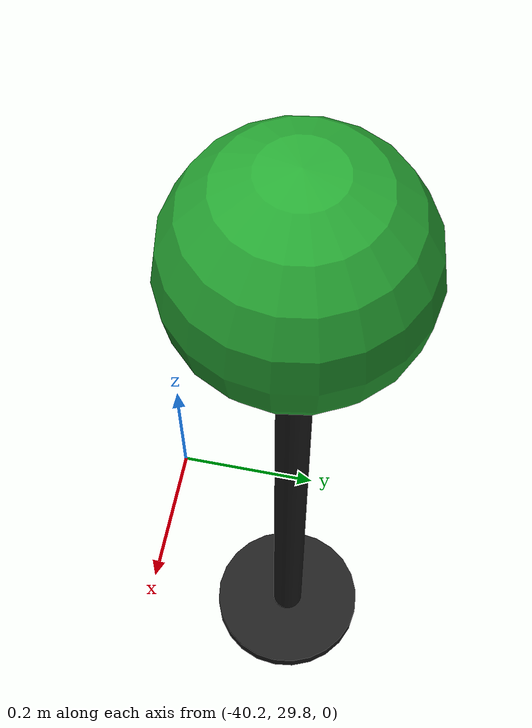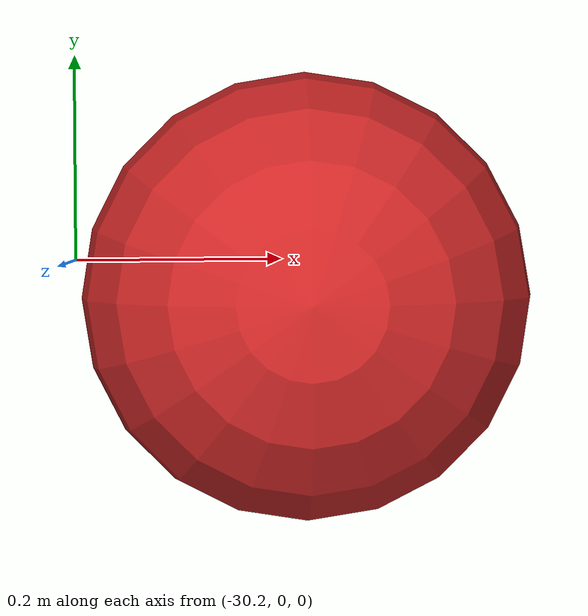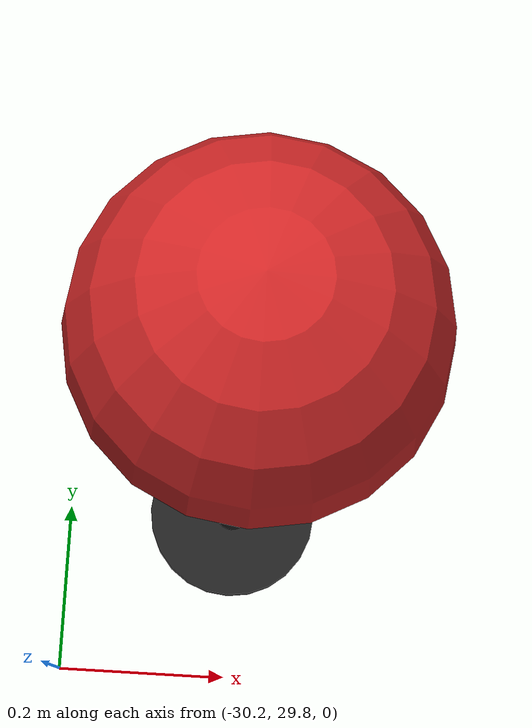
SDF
<sdf version="1.4">
 <world name="SandIsland">
  <wind><linear_velocity>10 0 0</linear_velocity></wind>
  <include><uri>model://sun</uri></include>
  <include><pose>-30 0 0 0 0 0</pose><name>red_buoy_entrance</name><uri>model://models/red_buoy</uri></include>
  <include>
   <pose>-40 0 0 0 0 0</pose>
   <name>green_buoy_entrance</name>
   <uri>model://models/green_buoy</uri>
  </include>
  <include><pose>-30 30 0 0 0 0</pose><name>red_buoy_exit</name><uri>model://models/red_buoy</uri></include>
  <include><pose>-40 30 0 0 0 0</pose><name>green_buoy_exit</name><uri>model://models/green_buoy</uri></include>
 </world>
</sdf>

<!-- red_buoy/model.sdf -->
<sdf version="1.5">
  <model name="red_buoy">
    <static>false</static>
    <link name="link">

      <collision name="flare">
        <pose>0 0 0.75 0 0 0</pose>
        <geometry>
          <cylinder>
            <radius>0.125</radius>
            <length>1.5</length>
          </cylinder>
        </geometry>
      </collision>

      <visual name="flare">
        <cast_shadows>false</cast_shadows>
        <pose>0 0 0.4 0 0 0</pose>
        <geometry>
          <cylinder>
            <radius>0.02</radius>
            <length>0.8</length>
          </cylinder>
        </geometry>
        <material>
          <script>
            <uri>file://media/materials/scripts/colors.material</uri>
            <name>SAUVC/Black</name>
          </script>
        </material>
      </visual>

      <visual name="ball">
        <cast_shadows>false</cast_shadows>
        <pose>0 0 0.82 0 0 0</pose>
        <geometry>
          <sphere>
            <radius>0.13</radius>
          </sphere>
        </geometry>
        <material>
          <script>
            <uri>file://media/materials/scripts/colors.material</uri>
            <name>SAUVC/Red</name>
          </script>
        </material>
      </visual>

      <visual name="stand">
        <cast_shadows>false</cast_shadows>
        <pose>0 0 0.01 0 0 0</pose>
        <geometry>
          <cylinder>
            <radius>0.1</radius>
            <length>0.02</length>
          </cylinder>
        </geometry>
        <material>
          <script>
            <uri>file://media/materials/scripts/colors.material</uri>
            <name>SAUVC/Black</name>
          </script>
        </material>
      </visual>

    </link>
  </model>
</sdf>

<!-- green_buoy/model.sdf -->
<sdf version="1.5">
  <model name="green_buoy">
    <static>false</static>
    <link name="link">

      <collision name="flare">
        <pose>0 0 0.75 0 0 0</pose>
        <geometry>
          <cylinder>
            <radius>0.125</radius>
            <length>1.5</length>
          </cylinder>
        </geometry>
      </collision>

      <visual name="flare">
        <cast_shadows>false</cast_shadows>
        <pose>0 0 0.4 0 0 0</pose>
        <geometry>
          <cylinder>
            <radius>0.02</radius>
            <length>0.8</length>
          </cylinder>
        </geometry>
        <material>
          <script>
            <uri>file://media/materials/scripts/colors.material</uri>
            <name>SAUVC/Black</name>
          </script>
        </material>
      </visual>

      <visual name="ball">
        <cast_shadows>false</cast_shadows>
        <pose>0 0 0.82 0 0 0</pose>
        <geometry>
          <sphere>
            <radius>0.13</radius>
          </sphere>
        </geometry>
        <material>
          <script>
            <uri>file://media/materials/scripts/colors.material</uri>
            <name>SAUVC/Green</name>
          </script>
        </material>
      </visual>

      <visual name="stand">
        <cast_shadows>false</cast_shadows>
        <pose>0 0 0.01 0 0 0</pose>
        <geometry>
          <cylinder>
            <radius>0.1</radius>
            <length>0.02</length>
          </cylinder>
        </geometry>
        <material>
          <script>
            <uri>file://media/materials/scripts/colors.material</uri>
            <name>SAUVC/Black</name>
          </script>
        </material>
      </visual>

    </link>
  </model>
</sdf>
